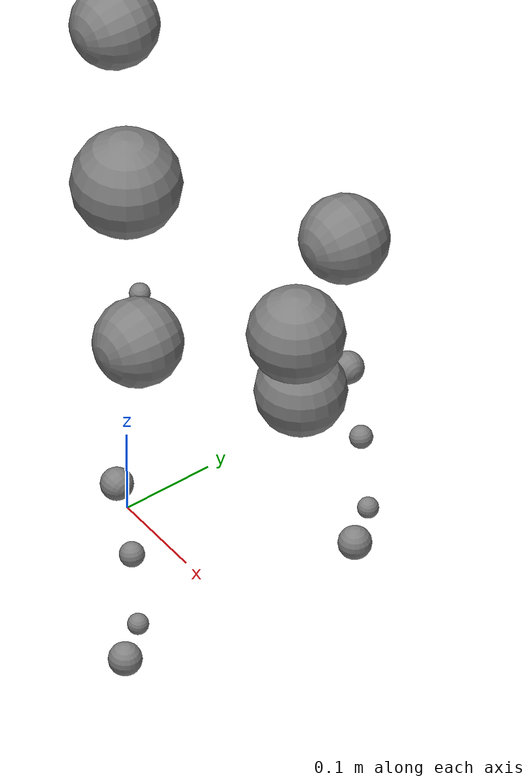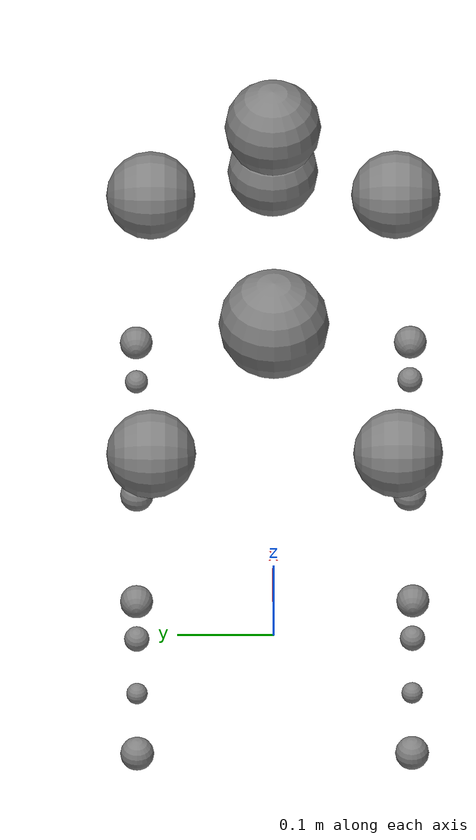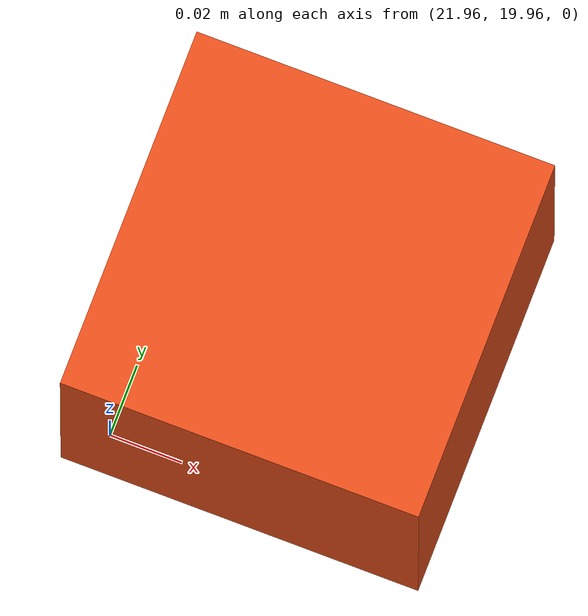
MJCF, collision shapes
<mujoco model="go2 porace scene">
  <compiler angle="radian" meshdir="assets/"/>

  <option integrator="Euler" cone="pyramidal" timestep="0.004" impratio="100" iterations="1" ls_iterations="5">
    <flag eulerdamp="disable"/>
  </option>

  <size nkey="1"/>

  <statistic meansize="0.04" extent="0.8" center="0 0 0.1"/>

  <visual>
    <global azimuth="120" elevation="-20"/>
    <quality shadowsize="8192"/>
    <headlight ambient="0.2 0.2 0.2" diffuse="0.8 0.8 0.8" specular="1 1 1"/>
  </visual>

  <default>
    <default class="go2">
      <joint armature="0.01" damping="0.5" axis="0 1 0"/>
      <geom condim="1" friction="0.6" margin="0.001"/>
      <general forcerange="-24 24" biastype="affine" gainprm="35" biasprm="0 -35 -0.5"/>
      <default class="abduction">
        <joint range="-1.0472 1.0472" axis="1 0 0"/>
        <general ctrlrange="-0.9472 0.9472"/>
      </default>
      <default class="hip">
        <joint range="-1.5708 3.4907"/>
        <general ctrlrange="-1.4 2.5"/>
      </default>
      <default class="knee">
        <joint range="-2.7227 -0.83776"/>
        <general ctrlrange="-2.6227 -0.84776"/>
      </default>
      <default class="visual">
        <geom type="mesh" contype="0" conaffinity="0" group="2"/>
      </default>
      <default class="go2foot">
        <geom rgba="0.231373 0.380392 0.705882 1"/>
        <site group="1"/>
      </default>
      <default class="collision">
        <geom group="3"/>
        <default class="foot">
          <geom size="0.0175 0 0" condim="6" priority="1" friction="0.8 0.02 0.01" solimp="0.015 1 0.031"/>
        </default>
      </default>
    </default>
    <default class="cube">
      <geom size="0.05 0.05 0.05" type="box" friction="0.6" material="cube"/>
    </default>
  </default>

  <asset>
    <texture type="skybox" colorspace="auto" builtin="gradient" rgb1="1 1 1" rgb2="1 1 1" width="800" height="4800"/>
    <texture type="2d" colorspace="auto" name="groundplane" builtin="checker" mark="edge" rgb1="1 1 1" rgb2="1 1 1" width="300" height="300"/>
    <material name="metal" rgba="0.9 0.95 0.95 1"/>
    <material name="black" rgba="0 0 0 1"/>
    <material name="white"/>
    <material name="gray" rgba="0.671705 0.692426 0.77427 1"/>
    <material name="groundplane" texture="groundplane" texrepeat="5 5" texuniform="true"/>
    <material name="cube" rgba="0.9 0.3 0.1 1"/>
    <mesh name="base_0" file="base_0.obj"/>
    <mesh name="base_1" file="base_1.obj"/>
    <mesh name="base_2" file="base_2.obj"/>
    <mesh name="base_3" file="base_3.obj"/>
    <mesh name="base_4" file="base_4.obj"/>
    <mesh name="hip_0" file="hip_0.obj"/>
    <mesh name="hip_1" file="hip_1.obj"/>
    <mesh name="thigh_0" file="thigh_0.obj"/>
    <mesh name="thigh_1" file="thigh_1.obj"/>
    <mesh name="thigh_mirror_0" file="thigh_mirror_0.obj"/>
    <mesh name="thigh_mirror_1" file="thigh_mirror_1.obj"/>
    <mesh name="calf_0" file="calf_0.obj"/>
    <mesh name="calf_1" file="calf_1.obj"/>
    <mesh name="calf_mirror_0" file="calf_mirror_0.obj"/>
    <mesh name="calf_mirror_1" file="calf_mirror_1.obj"/>
    <mesh name="foot" file="foot.obj"/>
  </asset>

  <worldbody>
    <geom name="floor" size="0 0 0.01" type="plane" conaffinity="0" priority="1" friction="0.6" material="groundplane"/>
    <body name="base" childclass="go2" pos="0 0 0.445">
      <inertial pos="0.021112 0 -0.005366" quat="-0.000543471 0.713435 -0.00173769 0.700719" mass="6.921" diaginertia="0.107027 0.0980771 0.0244531"/>
      <joint type="free" armature="0" damping="0"/>
      <geom class="visual" pos="0 0 0" quat="1 0 0 0" material="black" mesh="base_0"/>
      <geom class="visual" pos="0 0 0" quat="1 0 0 0" material="black" mesh="base_1"/>
      <geom class="visual" material="black" mesh="base_2"/>
      <geom class="visual" pos="0 0 0" quat="1 0 0 0" material="white" mesh="base_3"/>
      <geom class="visual" pos="0 0 0" quat="1 0 0 0" material="gray" mesh="base_4"/>
      <geom class="collision" size="0.057"/>
      <geom class="collision" size="0.05" pos="0.285 0 0.01"/>
      <geom class="collision" size="0.047" pos="0.293 0 -0.06"/>
      <site name="imu" pos="-0.02557 0 0.04232"/>
      <body name="FL_hip" pos="0.1934 0.0465 0">
        <inertial pos="-0.0054 0.00194 -0.000105" quat="0.497014 0.499245 0.505462 0.498237" mass="0.678" diaginertia="0.00088403 0.000596003 0.000479967"/>
        <joint name="FL_hip_joint" class="abduction"/>
        <geom class="visual" quat="1 0 0 0" material="metal" mesh="hip_0"/>
        <geom class="visual" quat="1 0 0 0" material="gray" mesh="hip_1"/>
        <geom class="collision" size="0.046" pos="0 0.08 0" quat="0.707107 0.707107 0 0"/>
        <body name="FL_thigh" pos="0 0.0955 0">
          <inertial pos="-0.00374 -0.0223 -0.0327" quat="0.829533 0.0847635 -0.0200632 0.551623" mass="1.152" diaginertia="0.00594973 0.00584149 0.000878787"/>
          <joint name="FL_thigh_joint" class="hip"/>
          <geom class="visual" quat="1 0 0 0" material="metal" mesh="thigh_0"/>
          <geom class="visual" quat="1 0 0 0" material="gray" mesh="thigh_1"/>
          <geom class="collision" size="0.017" pos="-0.015 0 -0.1955" quat="0.707107 0 0.707107 0"/>
          <body name="FL_calf" pos="0 0 -0.213">
            <inertial pos="0.00629595 -0.000622121 -0.141417" quat="0.710672 0.00154099 -0.00450087 0.703508" mass="0.241352" diaginertia="0.0014901 0.00146356 5.31397e-05"/>
            <joint name="FL_calf_joint" class="knee"/>
            <geom class="visual" pos="0 0 0" quat="1 0 0 0" material="gray" mesh="calf_0"/>
            <geom class="visual" pos="0 0 0" quat="1 0 0 0" material="black" mesh="calf_1"/>
            <geom class="collision" size="0.012" pos="0.008 0 -0.06" quat="0.994493 0 -0.104807 0"/>
            <geom class="collision" size="0.011" pos="0.02 0 -0.148" quat="0.999688 0 0.0249974 0"/>
            <geom class="visual" pos="0 0 -0.213" quat="1 0 0 0" material="black" mesh="foot"/>
            <geom name="FL" class="foot" pos="-0.002 0 -0.213"/>
            <site name="FL_foot" class="go2foot" pos="-0.002 0 -0.213"/>
          </body>
        </body>
      </body>
      <body name="FR_hip" pos="0.1934 -0.0465 0">
        <inertial pos="-0.0054 -0.00194 -0.000105" quat="0.498237 0.505462 0.499245 0.497014" mass="0.678" diaginertia="0.00088403 0.000596003 0.000479967"/>
        <joint name="FR_hip_joint" class="abduction"/>
        <geom class="visual" quat="4.63268e-05 1 0 0" material="metal" mesh="hip_0"/>
        <geom class="visual" quat="4.63268e-05 1 0 0" material="gray" mesh="hip_1"/>
        <geom class="collision" size="0.046" pos="0 -0.08 0" quat="0.707107 0.707107 0 0"/>
        <body name="FR_thigh" pos="0 -0.0955 0">
          <inertial pos="-0.00374 0.0223 -0.0327" quat="0.551623 -0.0200632 0.0847635 0.829533" mass="1.152" diaginertia="0.00594973 0.00584149 0.000878787"/>
          <joint name="FR_thigh_joint" class="hip"/>
          <geom class="visual" quat="1 0 0 0" material="metal" mesh="thigh_mirror_0"/>
          <geom class="visual" quat="1 0 0 0" material="gray" mesh="thigh_mirror_1"/>
          <geom class="collision" size="0.017" pos="-0.015 0 -0.1955" quat="0.707107 0 0.707107 0"/>
          <body name="FR_calf" pos="0 0 -0.213">
            <inertial pos="0.00629595 0.000622121 -0.141417" quat="0.703508 -0.00450087 0.00154099 0.710672" mass="0.241352" diaginertia="0.0014901 0.00146356 5.31397e-05"/>
            <joint name="FR_calf_joint" class="knee"/>
            <geom class="visual" pos="0 0 0" quat="1 0 0 0" material="gray" mesh="calf_mirror_0"/>
            <geom class="visual" pos="0 0 0" quat="1 0 0 0" material="black" mesh="calf_mirror_1"/>
            <geom class="collision" size="0.013" pos="0.01 0 -0.06" quat="0.995004 0 -0.0998334 0"/>
            <geom class="collision" size="0.011" pos="0.02 0 -0.148" quat="0.999688 0 0.0249974 0"/>
            <geom class="visual" pos="0 0 -0.213" quat="1 0 0 0" material="black" mesh="foot"/>
            <geom name="FR" class="foot" pos="-0.002 0 -0.213"/>
            <site name="FR_foot" class="go2foot" pos="-0.002 0 -0.213"/>
          </body>
        </body>
      </body>
      <body name="RL_hip" pos="-0.1934 0.0465 0">
        <inertial pos="0.0054 0.00194 -0.000105" quat="0.505462 0.498237 0.497014 0.499245" mass="0.678" diaginertia="0.00088403 0.000596003 0.000479967"/>
        <joint name="RL_hip_joint" class="abduction"/>
        <geom class="visual" quat="4.63268e-05 0 1 0" material="metal" mesh="hip_0"/>
        <geom class="visual" quat="4.63268e-05 0 1 0" material="gray" mesh="hip_1"/>
        <geom class="collision" size="0.046" pos="0 0.08 0" quat="0.707107 0.707107 0 0"/>
        <body name="RL_thigh" pos="0 0.0955 0">
          <inertial pos="-0.00374 -0.0223 -0.0327" quat="0.829533 0.0847635 -0.0200632 0.551623" mass="1.152" diaginertia="0.00594973 0.00584149 0.000878787"/>
          <joint name="RL_thigh_joint" class="hip"/>
          <geom class="visual" quat="1 0 0 0" material="metal" mesh="thigh_0"/>
          <geom class="visual" quat="1 0 0 0" material="gray" mesh="thigh_1"/>
          <geom class="collision" size="0.017" pos="-0.015 0 -0.1955" quat="0.707107 0 0.707107 0"/>
          <body name="RL_calf" pos="0 0 -0.213">
            <inertial pos="0.00629595 -0.000622121 -0.141417" quat="0.710672 0.00154099 -0.00450087 0.703508" mass="0.241352" diaginertia="0.0014901 0.00146356 5.31397e-05"/>
            <joint name="RL_calf_joint" class="knee"/>
            <geom class="visual" pos="0 0 0" quat="1 0 0 0" material="gray" mesh="calf_0"/>
            <geom class="visual" pos="0 0 0" quat="1 0 0 0" material="black" mesh="calf_1"/>
            <geom class="collision" size="0.013" pos="0.01 0 -0.06" quat="0.995004 0 -0.0998334 0"/>
            <geom class="collision" size="0.011" pos="0.02 0 -0.148" quat="0.999688 0 0.0249974 0"/>
            <geom class="visual" pos="0 0 -0.213" quat="1 0 0 0" material="black" mesh="foot"/>
            <geom name="RL" class="foot" pos="-0.002 0 -0.213"/>
            <site name="RL_foot" class="go2foot" pos="-0.002 0 -0.213"/>
          </body>
        </body>
      </body>
      <body name="RR_hip" pos="-0.1934 -0.0465 0">
        <inertial pos="0.0054 -0.00194 -0.000105" quat="0.499245 0.497014 0.498237 0.505462" mass="0.678" diaginertia="0.00088403 0.000596003 0.000479967"/>
        <joint name="RR_hip_joint" class="abduction"/>
        <geom class="visual" quat="2.14617e-09 4.63268e-05 4.63268e-05 -1" material="metal" mesh="hip_0"/>
        <geom class="visual" quat="2.14617e-09 4.63268e-05 4.63268e-05 -1" material="gray" mesh="hip_1"/>
        <geom class="collision" size="0.046" pos="0 -0.08 0" quat="0.707107 0.707107 0 0"/>
        <body name="RR_thigh" pos="0 -0.0955 0">
          <inertial pos="-0.00374 0.0223 -0.0327" quat="0.551623 -0.0200632 0.0847635 0.829533" mass="1.152" diaginertia="0.00594973 0.00584149 0.000878787"/>
          <joint name="RR_thigh_joint" class="hip"/>
          <geom class="visual" quat="1 0 0 0" material="metal" mesh="thigh_mirror_0"/>
          <geom class="visual" quat="1 0 0 0" material="gray" mesh="thigh_mirror_1"/>
          <geom class="collision" size="0.017" pos="-0.015 0 -0.1955" quat="0.707107 0 0.707107 0"/>
          <body name="RR_calf" pos="0 0 -0.213">
            <inertial pos="0.00629595 0.000622121 -0.141417" quat="0.703508 -0.00450087 0.00154099 0.710672" mass="0.241352" diaginertia="0.0014901 0.00146356 5.31397e-05"/>
            <joint name="RR_calf_joint" class="knee"/>
            <geom class="visual" pos="0 0 0" quat="1 0 0 0" material="gray" mesh="calf_mirror_0"/>
            <geom class="visual" pos="0 0 0" quat="1 0 0 0" material="black" mesh="calf_mirror_1"/>
            <geom class="collision" size="0.013" pos="0.01 0 -0.06" quat="0.995004 0 -0.0998334 0"/>
            <geom class="collision" size="0.011" pos="0.02 0 -0.148" quat="0.999688 0 0.0249974 0"/>
            <geom class="visual" pos="0 0 -0.213" quat="1 0 0 0" material="black" mesh="foot"/>
            <geom name="RR" class="foot" pos="-0.002 0 -0.213"/>
            <site name="RR_foot" class="go2foot" pos="-0.002 0 -0.213"/>
          </body>
        </body>
      </body>
    </body>
    <body name="cube0" pos="20 20 0.05">
      <joint name="cube0_joint" type="free"/>
      <geom name="cube0_geom" class="cube"/>
    </body>
    <body name="cube1" pos="22 20 0.05">
      <joint name="cube1_joint" type="free"/>
      <geom name="cube1_geom" class="cube"/>
    </body>
    <body name="cube2" pos="24 20 0.05">
      <joint name="cube2_joint" type="free"/>
      <geom name="cube2_geom" class="cube"/>
    </body>
    <body name="cube3" pos="26 20 0.05">
      <joint name="cube3_joint" type="free"/>
      <geom name="cube3_geom" class="cube"/>
    </body>
  </worldbody>

  <actuator>
    <general name="FL_hip" class="abduction" joint="FL_hip_joint"/>
    <general name="FL_thigh" class="hip" joint="FL_thigh_joint"/>
    <general name="FL_calf" class="knee" joint="FL_calf_joint"/>
    <general name="FR_hip" class="abduction" joint="FR_hip_joint"/>
    <general name="FR_thigh" class="hip" joint="FR_thigh_joint"/>
    <general name="FR_calf" class="knee" joint="FR_calf_joint"/>
    <general name="RL_hip" class="abduction" joint="RL_hip_joint"/>
    <general name="RL_thigh" class="hip" joint="RL_thigh_joint"/>
    <general name="RL_calf" class="knee" joint="RL_calf_joint"/>
    <general name="RR_hip" class="abduction" joint="RR_hip_joint"/>
    <general name="RR_thigh" class="hip" joint="RR_thigh_joint"/>
    <general name="RR_calf" class="knee" joint="RR_calf_joint"/>
  </actuator>

  <sensor>
    <gyro site="imu" name="gyro"/>
    <velocimeter site="imu" name="local_linvel"/>
    <accelerometer site="imu" name="accelerometer"/>
    <framepos objtype="site" objname="imu" name="position"/>
    <framezaxis objtype="site" objname="imu" name="upvector"/>
    <framexaxis objtype="site" objname="imu" name="forwardvector"/>
    <framelinvel objtype="site" objname="imu" name="global_linvel"/>
    <frameangvel objtype="site" objname="imu" name="global_angvel"/>
    <framequat objtype="site" objname="imu" name="orientation"/>
    <framelinvel objtype="site" objname="FL_foot" name="FL_global_linvel"/>
    <framelinvel objtype="site" objname="FR_foot" name="FR_global_linvel"/>
    <framelinvel objtype="site" objname="RL_foot" name="RL_global_linvel"/>
    <framelinvel objtype="site" objname="RR_foot" name="RR_global_linvel"/>
    <framepos objtype="site" objname="FL_foot" reftype="site" refname="imu" name="FL_pos"/>
    <framepos objtype="site" objname="FR_foot" reftype="site" refname="imu" name="FR_pos"/>
    <framepos objtype="site" objname="RL_foot" reftype="site" refname="imu" name="RL_pos"/>
    <framepos objtype="site" objname="RR_foot" reftype="site" refname="imu" name="RR_pos"/>
    <contact geom1="FL" geom2="floor" reduce="mindist" name="FL_floor_found"/>
    <contact geom1="FR" geom2="floor" reduce="mindist" name="FR_floor_found"/>
    <contact geom1="RL" geom2="floor" reduce="mindist" name="RL_floor_found"/>
    <contact geom1="RR" geom2="floor" reduce="mindist" name="RR_floor_found"/>
  </sensor>

  <keyframe>
    <key name="home" qpos="0 0 0.27 1 0 0 0 0 0.9 -1.8 0 0.9 -1.8 0 0.9 -1.8 0 0.9 -1.8 20 20 0.05 1 0 0 0 22 20 0.05 1 0 0 0 24 20 0.05 1 0 0 0 26 20 0.05 1 0 0 0" ctrl="0 0.9 -1.8 0 0.9 -1.8 0 0.9 -1.8 0 0.9 -1.8"/>
  </keyframe>
</mujoco>
